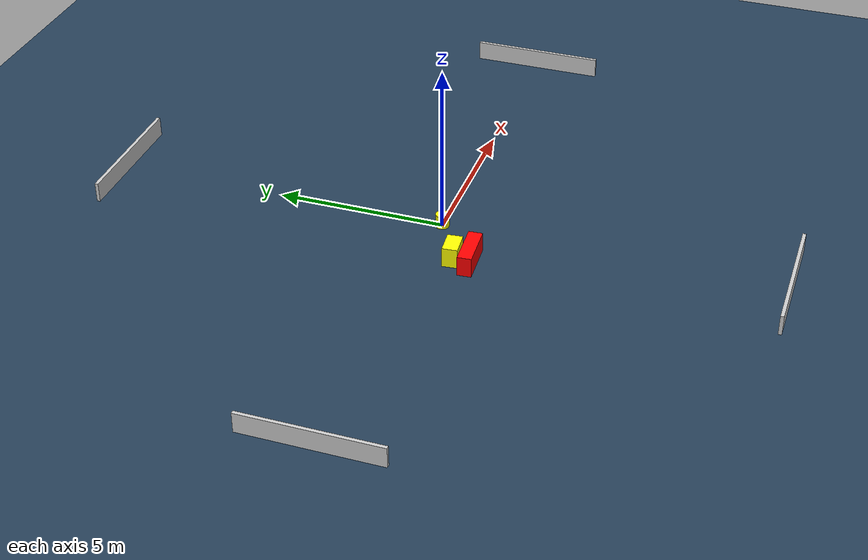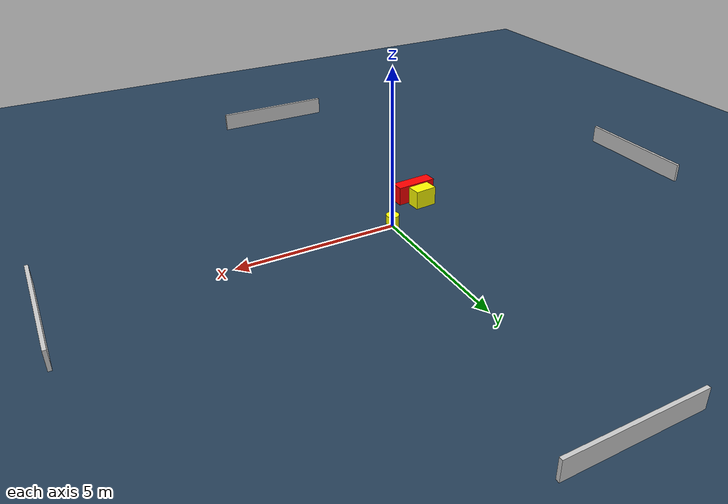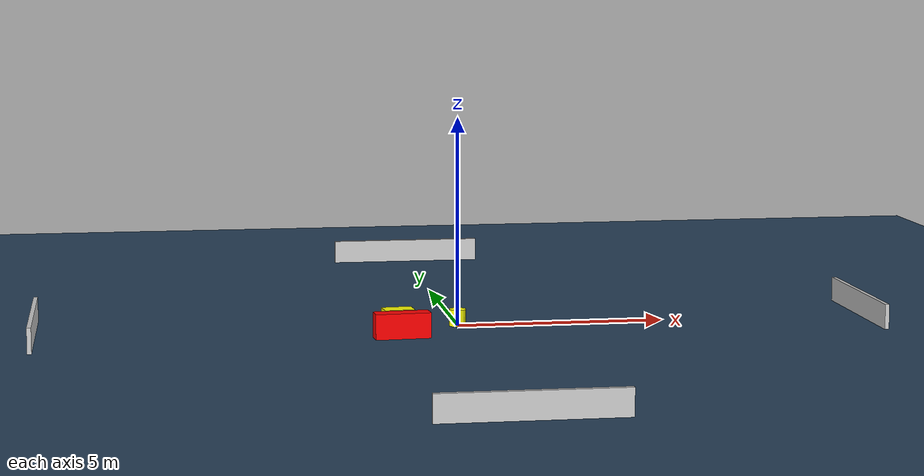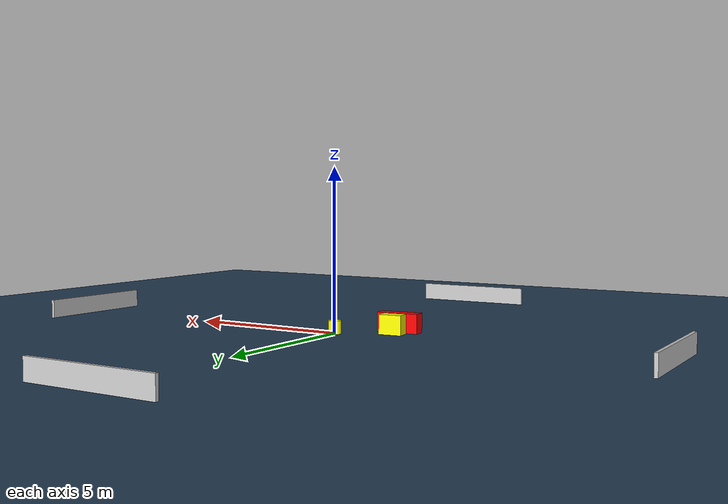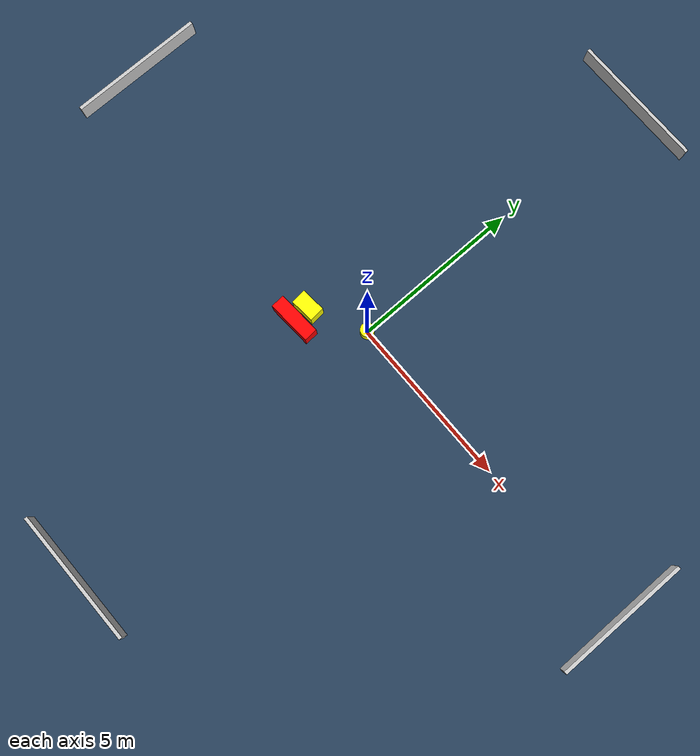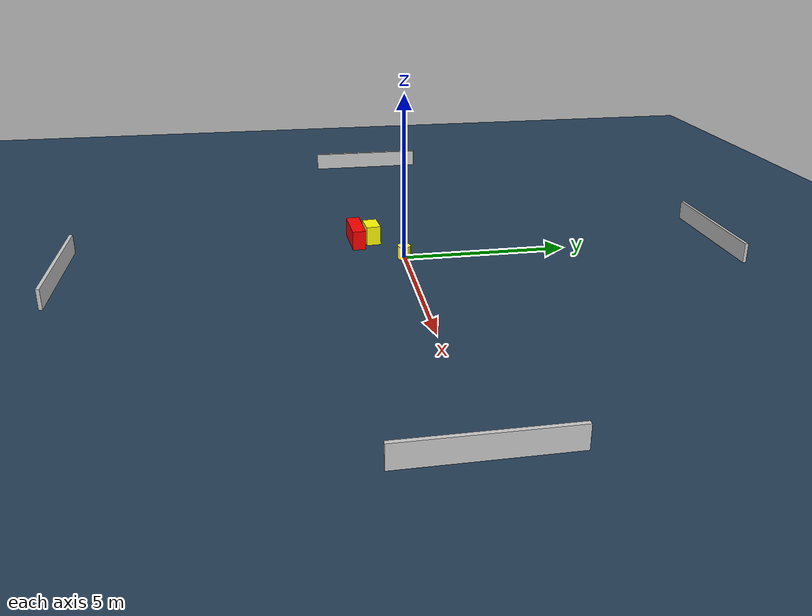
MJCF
<?xml version="1.0" ?>
<mujoco model="generated_environment">
  <option timestep="0.01" integrator="RK4" cone="elliptic"/>
  <default>
    <geom density="1"/>
  </default>
  <asset>
    <texture builtin="gradient" height="3072" name="skybox" rgb1="0.3 0.5 0.7" rgb2="0 0 0" type="skybox" width="512"/>
    <texture builtin="checker" height="300" name="groundplane" rgb1="0.2 0.3 0.4" rgb2="0.1 0.2 0.3" type="2d" width="300"/>
    <material name="groundplane" reflectance="0.2" texrepeat="5 5" texture="groundplane"/>
  </asset>
  <worldbody>
    <light dir="0 0 -1" directional="true" pos="0 0 1.5"/>
    <geom condim="3" friction="0.5 0.005 0.001" material="groundplane" name="floor" pos="0 0 0" size="0 0 0.05" type="plane"/>
    <body name="walls">
      <geom name="wall_1" condim="4" pos="-10.0 0.0 0.3" rgba="0.800000011920929 0.800000011920929 0.800000011920929 1.0" size="0.05 2.0 0.3" type="box"/>
      <geom name="wall_2" condim="4" pos="10.0 0.0 0.3" rgba="0.800000011920929 0.800000011920929 0.800000011920929 1.0" size="0.05 2.0 0.3" type="box"/>
      <geom name="wall_3" condim="4" pos="0.0 -10.0 0.3" rgba="0.800000011920929 0.800000011920929 0.800000011920929 1.0" size="2.0 0.05 0.3" type="box"/>
      <geom name="wall_4" condim="4" pos="0.0 10.0 0.3" rgba="0.800000011920929 0.800000011920929 0.800000011920929 1.0" size="2.0 0.05 0.3" type="box"/>
    </body>
    <body name="robot">
      <joint name="joint_x" type="slide" pos="0 0 0" axis="1 0 0"/>
      <joint name="joint_y" type="slide" pos="0 0 0" axis="0 1 0"/>
      <geom name="robot" type="cylinder" pos="0.0 0.0 0.2" size="0.2 0.2 0.0" mass="5.0" friction="1.0 0.005 0.0001" condim="4" rgba="1.0 1.0 0.0 1.0"/>
    </body>
    <body name="obstacle_1_movable">
      <geom name="obstacle_1_movable" condim="4" pos="-1.5329004792859564 -0.8076474126389879 0.3" euler="0 0 5.106349721237047" friction="0.0 0.005 0.001" rgba="1.0 1.0 0.0 1.0" size="0.354766703800022 0.2234958979179366 0.3" type="box" mass="0.1"/>
      <joint type="free"/>
    </body>
    <body name="obstacle_2_static">
      <geom name="obstacle_2_static" condim="4" pos="-1.5036191310102582 -1.307061383965224 0.3" euler="0 0 3.498932507273733" friction="0.0 0.005 0.001" rgba="1.0 0.0 0.0 1.0" size="0.6537423588456659 0.2047141226284595 0.3" type="box"/>
    </body>
  </worldbody>
  <actuator>
    <motor name="actuator_x" joint="joint_x" gear="1" ctrlrange="-1 1"/>
    <motor name="actuator_y" joint="joint_y" gear="1" ctrlrange="-1 1"/>
  </actuator>
</mujoco>
